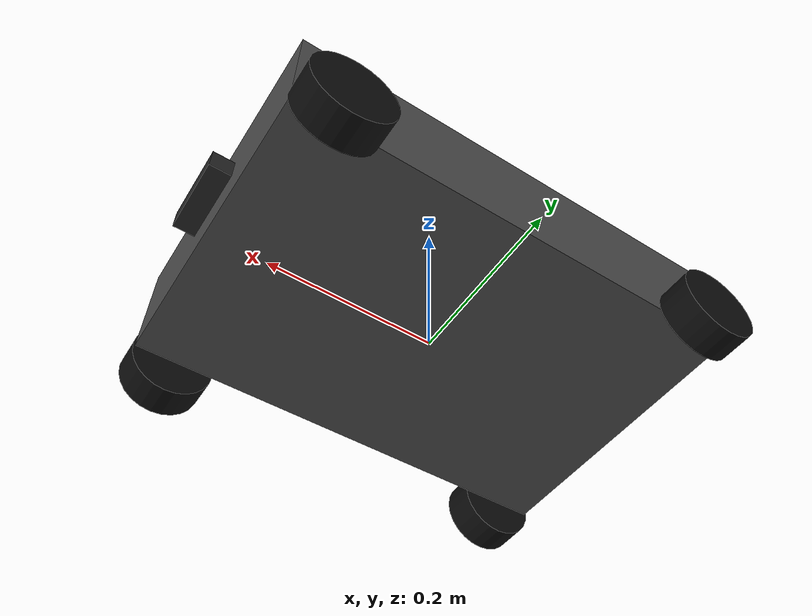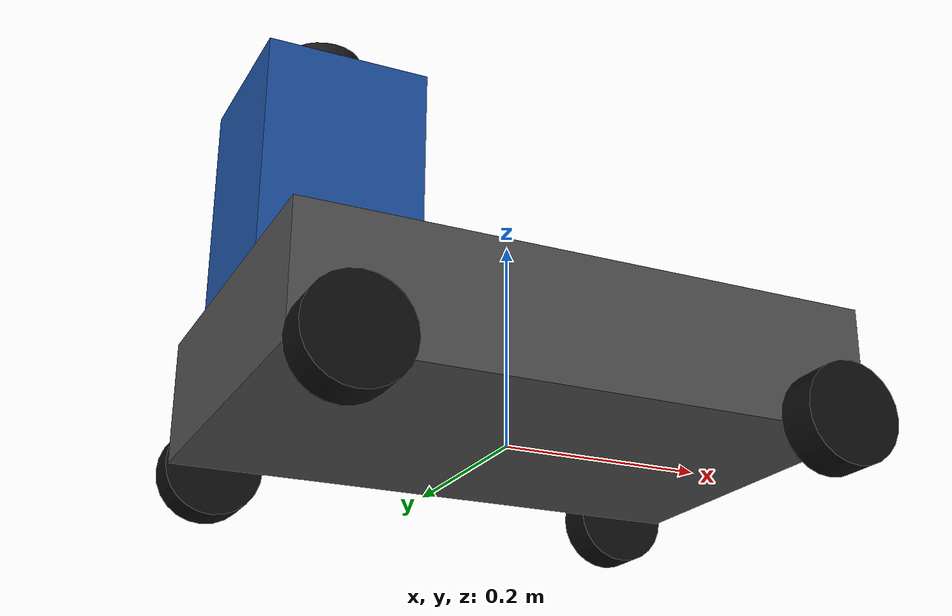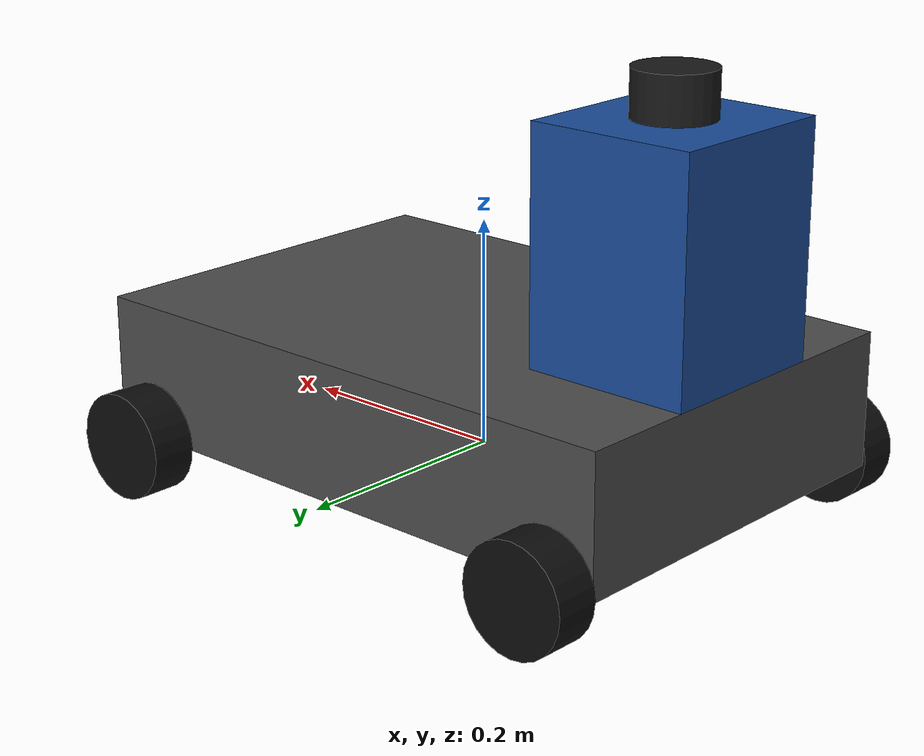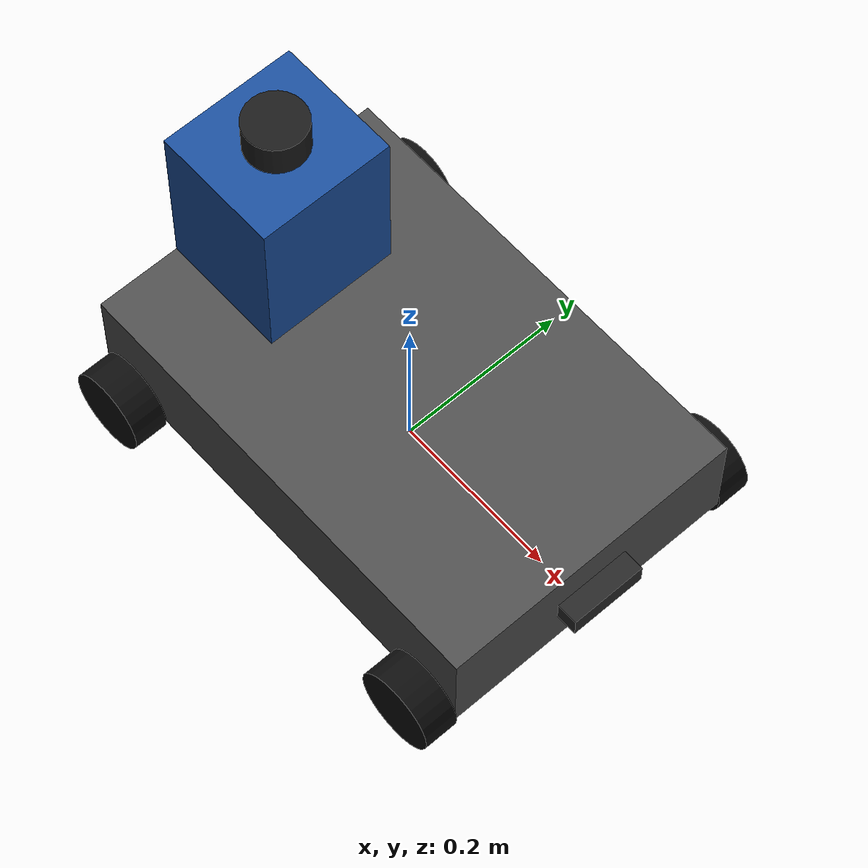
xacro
<?xml version="1.0"?>
<robot name="bebot" xmlns:xacro="http://www.ros.org/wiki/xacro">

  <!-- ==================== Robot dimension parameters ==================== -->
  <!-- Adjust these to match the real chassis. All units in meters / kg.     -->
  <xacro:property name="chassis_length" value="0.54"/>
  <xacro:property name="chassis_width"  value="0.36"/>
  <xacro:property name="chassis_height" value="0.12"/>
  <xacro:property name="chassis_mass"   value="5.0"/>

  <xacro:property name="wheel_radius"   value="0.0475"/>
  <xacro:property name="wheel_width"    value="0.04"/>
  <xacro:property name="wheel_mass"     value="0.3"/>

  <!-- distance from robot center to the wheel plane on each side -->
  <xacro:property name="track_width"    value="0.40"/>
  <!-- distance from robot center to front/rear axle -->
  <xacro:property name="wheelbase"      value="0.225"/>

  <!-- ground clearance so the chassis floats above the wheel centers -->
  <xacro:property name="chassis_z_off"  value="${wheel_radius + 0.01}"/>

  <material name="chassis_grey">
    <color rgba="0.3 0.3 0.3 1.0"/>
  </material>
  <material name="wheel_black">
    <color rgba="0.05 0.05 0.05 1.0"/>
  </material>

  <!-- ==================== base_link / base_footprint ==================== -->
  <link name="base_footprint"/>

  <link name="base_link">
    <visual>
      <origin xyz="0 0 0" rpy="0 0 0"/>
      <geometry>
        <box size="${chassis_length} ${chassis_width} ${chassis_height}"/>
      </geometry>
      <material name="chassis_grey"/>
    </visual>
    <collision>
      <origin xyz="0 0 0" rpy="0 0 0"/>
      <geometry>
        <box size="${chassis_length} ${chassis_width} ${chassis_height}"/>
      </geometry>
    </collision>
    <inertial>
      <mass value="${chassis_mass}"/>
      <origin xyz="0 0 0" rpy="0 0 0"/>
      <inertia
        ixx="${(1/12) * chassis_mass * (chassis_width*chassis_width + chassis_height*chassis_height)}" ixy="0" ixz="0"
        iyy="${(1/12) * chassis_mass * (chassis_length*chassis_length + chassis_height*chassis_height)}" iyz="0"
        izz="${(1/12) * chassis_mass * (chassis_length*chassis_length + chassis_width*chassis_width)}"/>
    </inertial>
  </link>

  <joint name="base_footprint_joint" type="fixed">
    <parent link="base_footprint"/>
    <child link="base_link"/>
    <origin xyz="0 0 ${chassis_z_off}" rpy="0 0 0"/>
  </joint>

  <!-- ==================== wheel macro ==================== -->
  <xacro:macro name="wheel" params="prefix x_off y_off">
    <link name="${prefix}_wheel_link">
      <visual>
        <origin xyz="0 0 0" rpy="${pi/2} 0 0"/>
        <geometry>
          <cylinder radius="${wheel_radius}" length="${wheel_width}"/>
        </geometry>
        <material name="wheel_black"/>
      </visual>
      <collision>
        <origin xyz="0 0 0" rpy="0 0 0"/>
        <geometry>
          <sphere radius="${wheel_radius}"/>
        </geometry>
      </collision>
      <inertial>
        <mass value="${wheel_mass}"/>
        <origin xyz="0 0 0" rpy="0 0 0"/>
        <inertia
          ixx="${(1/12) * wheel_mass * (3*wheel_radius*wheel_radius + wheel_width*wheel_width)}" ixy="0" ixz="0"
          iyy="${(1/12) * wheel_mass * (3*wheel_radius*wheel_radius + wheel_width*wheel_width)}" iyz="0"
          izz="${0.5 * wheel_mass * wheel_radius * wheel_radius}"/>
      </inertial>
    </link>

    <joint name="${prefix}_wheel_joint" type="continuous">
      <parent link="base_link"/>
      <child link="${prefix}_wheel_link"/>
      <origin xyz="${x_off} ${y_off} ${-chassis_z_off}" rpy="0 0 0"/>
      <axis xyz="0 1 0"/>
      <dynamics damping="0.1" friction="0.1"/>
    </joint>
  </xacro:macro>

  <!-- ==================== four skid-steer wheels ==================== -->
  <!-- Only the rear wheels carry quadrature encoders in hardware, but all
       four are simulated the same way kinematically (skid steer). -->
  <xacro:wheel prefix="front_left"  x_off="${wheelbase}"  y_off="${track_width/2}"/>
  <xacro:wheel prefix="front_right" x_off="${wheelbase}"  y_off="${-track_width/2}"/>
  <xacro:wheel prefix="rear_left"   x_off="${-wheelbase}" y_off="${track_width/2}"/>
  <xacro:wheel prefix="rear_right"  x_off="${-wheelbase}" y_off="${-track_width/2}"/>

  <!-- ==================== sensors ==================== -->

  <!-- ==================== rear electronics box ==================== -->
  <xacro:property name="box_length" value="0.15"/>
  <xacro:property name="box_width"  value="0.16"/>
  <xacro:property name="box_height" value="0.20"/>
  <xacro:property name="box_mass"   value="0.5"/>

  <material name="box_blue">
    <color rgba="0.1 0.3 0.6 1.0"/>
  </material>

  <link name="rear_box_link">
    <visual>
      <origin xyz="0 0 0" rpy="0 0 0"/>
      <geometry>
        <box size="${box_length} ${box_width} ${box_height}"/>
      </geometry>
      <material name="box_blue"/>
    </visual>
    <collision>
      <origin xyz="0 0 0" rpy="0 0 0"/>
      <geometry>
        <box size="${box_length} ${box_width} ${box_height}"/>
      </geometry>
    </collision>
    <inertial>
      <mass value="${box_mass}"/>
      <origin xyz="0 0 0" rpy="0 0 0"/>
      <inertia
        ixx="${(1/12) * box_mass * (box_width*box_width + box_height*box_height)}" ixy="0" ixz="0"
        iyy="${(1/12) * box_mass * (box_length*box_length + box_height*box_height)}" iyz="0"
        izz="${(1/12) * box_mass * (box_length*box_length + box_width*box_width)}"/>
    </inertial>
  </link>

  <joint name="rear_box_joint" type="fixed">
    <parent link="base_link"/>
    <child link="rear_box_link"/>
    <origin xyz="${-chassis_length/2 + box_length/2} 0 ${chassis_height/2 + box_height/2}" rpy="0 0 0"/>
  </joint>

  <!-- ==================== lidar ==================== -->
  <xacro:property name="lidar_radius" value="0.035"/>
  <xacro:property name="lidar_height" value="0.04"/>
  <xacro:property name="lidar_mass"   value="0.2"/>

  <material name="lidar_black">
    <color rgba="0.1 0.1 0.1 1.0"/>
  </material>

  <link name="laser_link">
    <visual>
      <origin xyz="0 0 0" rpy="0 0 0"/>
      <geometry>
        <cylinder radius="${lidar_radius}" length="${lidar_height}"/>
      </geometry>
      <material name="lidar_black"/>
    </visual>
    <collision>
      <origin xyz="0 0 0" rpy="0 0 0"/>
      <geometry>
        <cylinder radius="${lidar_radius}" length="${lidar_height}"/>
      </geometry>
    </collision>
    <inertial>
      <mass value="${lidar_mass}"/>
      <origin xyz="0 0 0" rpy="0 0 0"/>
      <inertia
        ixx="${(1/12) * lidar_mass * (3*lidar_radius*lidar_radius + lidar_height*lidar_height)}" ixy="0" ixz="0"
        iyy="${(1/12) * lidar_mass * (3*lidar_radius*lidar_radius + lidar_height*lidar_height)}" iyz="0"
        izz="${0.5 * lidar_mass * lidar_radius * lidar_radius}"/>
    </inertial>
  </link>

  <joint name="laser_joint" type="fixed">
    <parent link="rear_box_link"/>
    <child link="laser_link"/>
    <origin xyz="0 0 ${box_height/2 + lidar_height/2}" rpy="0 0 0"/>
  </joint>

  <!-- IMU mounted at same location as lidar -->
  <link name="imu_link"/>
  <joint name="imu_joint" type="fixed">
    <parent link="laser_link"/>
    <child link="imu_link"/>
    <origin xyz="0 0 0" rpy="0 0 0"/>
  </joint>

  <!-- ==================== front camera (RealSense D435i) ==================== -->
  <xacro:property name="camera_length" value="0.025"/>
  <xacro:property name="camera_width"  value="0.09"/>
  <xacro:property name="camera_height" value="0.025"/>
  <xacro:property name="camera_mass"   value="0.072"/> <!-- D435i datasheet weight -->
  <xacro:property name="camera_x_off"  value="${chassis_length/2 + camera_length/2}"/>
  <xacro:property name="camera_z_off"  value="0"/> <!-- chassis mid-height -->

  <material name="camera_dark_grey">
    <color rgba="0.15 0.15 0.15 1.0"/>
  </material>

  <link name="camera_link">
    <visual>
      <origin xyz="0 0 0" rpy="0 0 0"/>
      <geometry>
        <box size="${camera_length} ${camera_width} ${camera_height}"/>
      </geometry>
      <material name="camera_dark_grey"/>
    </visual>
    <collision>
      <origin xyz="0 0 0" rpy="0 0 0"/>
      <geometry>
        <box size="${camera_length} ${camera_width} ${camera_height}"/>
      </geometry>
    </collision>
    <inertial>
      <mass value="${camera_mass}"/>
      <origin xyz="0 0 0" rpy="0 0 0"/>
      <inertia
        ixx="${(1/12) * camera_mass * (camera_width*camera_width + camera_height*camera_height)}" ixy="0" ixz="0"
        iyy="${(1/12) * camera_mass * (camera_length*camera_length + camera_height*camera_height)}" iyz="0"
        izz="${(1/12) * camera_mass * (camera_length*camera_length + camera_width*camera_width)}"/>
    </inertial>
  </link>

  <joint name="camera_joint" type="fixed">
    <parent link="base_link"/>
    <child link="camera_link"/>
    <origin xyz="${camera_x_off} 0 ${camera_z_off}" rpy="0 0 0"/>
  </joint>

</robot>
